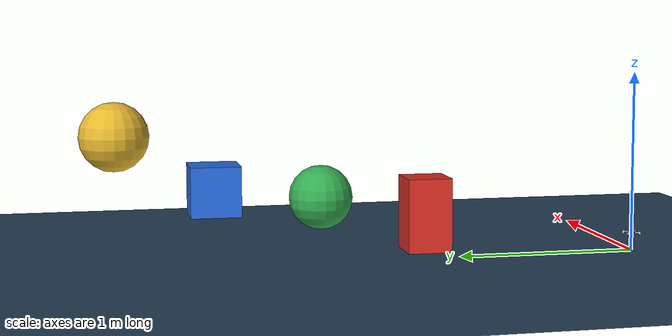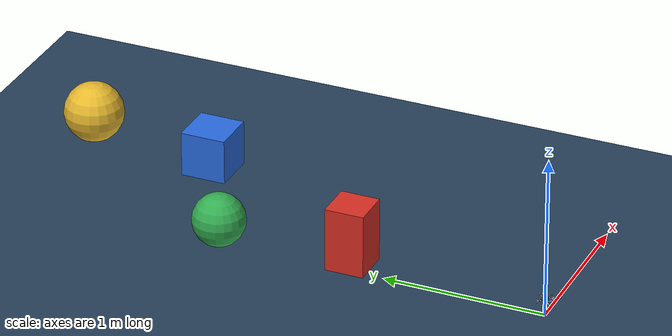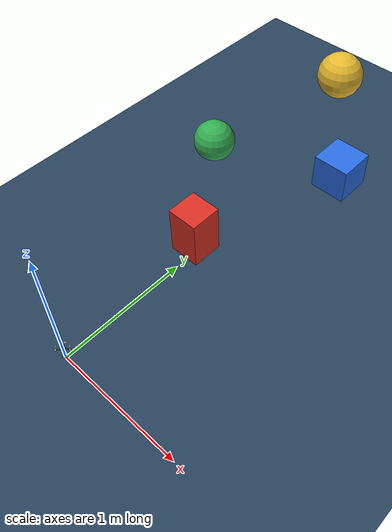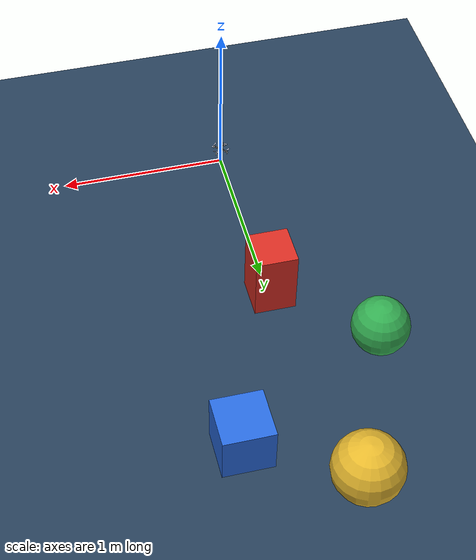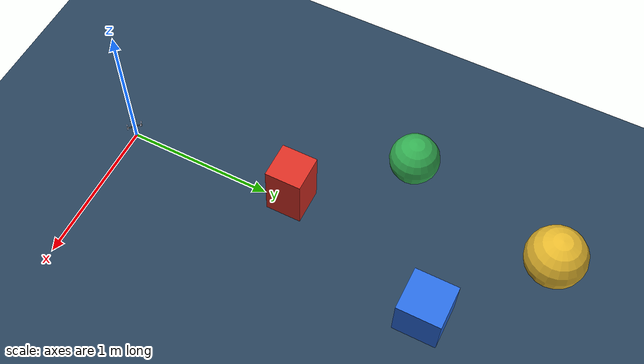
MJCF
<mujoco model="CF2 obstacle scene">
  <include file="cf2.xml"/>

  <statistic center="0 1.4 0.4" extent="2.2" meansize=".05"/>

  <visual>
    <headlight diffuse="0.6 0.6 0.6" ambient="0.3 0.3 0.3" specular="0 0 0"/>
    <rgba haze="0.15 0.25 0.35 1"/>
    <global azimuth="-20" elevation="-20" ellipsoidinertia="true"/>
  </visual>

  <asset>
    <texture type="skybox" builtin="gradient" rgb1="0.3 0.5 0.7" rgb2="0 0 0" width="512" height="3072"/>
    <texture type="2d" name="groundplane" builtin="checker" mark="edge" rgb1="0.2 0.3 0.4" rgb2="0.1 0.2 0.3"
      markrgb="0.8 0.8 0.8" width="300" height="300"/>
    <material name="groundplane" texture="groundplane" texuniform="true" texrepeat="5 5" reflectance="0.2"/>
    <material name="obstacle_red" rgba="0.85 0.18 0.14 1"/>
    <material name="obstacle_green" rgba="0.20 0.68 0.32 1"/>
    <material name="obstacle_blue" rgba="0.16 0.42 0.88 1"/>
    <material name="obstacle_yellow" rgba="0.90 0.72 0.18 1"/>
  </asset>

  <worldbody>
    <light pos="0 0 1.5" dir="0 0 -1" directional="true"/>
    <geom name="floor" size="0 0 0.05" type="plane" material="groundplane"/>

    <geom name="front_cube" type="box" pos="0.00 1.20 0.25" size="0.12 0.12 0.20" material="obstacle_red"/>
    <geom name="left_sphere" type="sphere" pos="-0.42 1.85 0.42" size="0.16" material="obstacle_green"/>
    <geom name="right_cube" type="box" pos="0.45 2.30 0.35" size="0.14 0.14 0.14" material="obstacle_blue"/>
    <geom name="high_sphere" type="sphere" pos="0.00 2.85 0.70" size="0.18" material="obstacle_yellow"/>
  </worldbody>
</mujoco>

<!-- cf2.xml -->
<mujoco model="cf2">
  <option integrator="RK4" density="1.225" viscosity="1.8e-5"/>

  <compiler inertiafromgeom="false" meshdir="assets" autolimits="true"/>

  <default>
    <default class="cf2">
      <default class="visual">
        <geom group="2" type="mesh" contype="0" conaffinity="0"/>
      </default>
      <default class="collision">
        <geom group="3" type="mesh"/>
      </default>
      <site group="5"/>
    </default>
  </default>

  <asset>
    <material name="polished_plastic" rgba="0.631 0.659 0.678 1"/>
    <material name="polished_gold" rgba="0.969 0.878 0.6 1"/>
    <material name="medium_gloss_plastic" rgba="0.109 0.184 0.0 1"/>
    <material name="propeller_plastic" rgba="0.792 0.820 0.933 1"/>
    <material name="white" rgba="1 1 1 1"/>
    <material name="body_frame_plastic" rgba="0.102 0.102 0.102 1"/>
    <material name="burnished_chrome" rgba="0.898 0.898 0.898 1"/>

    <mesh file="cf2_0.obj"/>
    <mesh file="cf2_1.obj"/>
    <mesh file="cf2_2.obj"/>
    <mesh file="cf2_3.obj"/>
    <mesh file="cf2_4.obj"/>
    <mesh file="cf2_5.obj"/>
    <mesh file="cf2_6.obj"/>
    <mesh file="cf2_collision_0.obj"/>
    <mesh file="cf2_collision_1.obj"/>
    <mesh file="cf2_collision_2.obj"/>
    <mesh file="cf2_collision_3.obj"/>
    <mesh file="cf2_collision_4.obj"/>
    <mesh file="cf2_collision_5.obj"/>
    <mesh file="cf2_collision_6.obj"/>
    <mesh file="cf2_collision_7.obj"/>
    <mesh file="cf2_collision_8.obj"/>
    <mesh file="cf2_collision_9.obj"/>
    <mesh file="cf2_collision_10.obj"/>
    <mesh file="cf2_collision_11.obj"/>
    <mesh file="cf2_collision_12.obj"/>
    <mesh file="cf2_collision_13.obj"/>
    <mesh file="cf2_collision_14.obj"/>
    <mesh file="cf2_collision_15.obj"/>
    <mesh file="cf2_collision_16.obj"/>
    <mesh file="cf2_collision_17.obj"/>
    <mesh file="cf2_collision_18.obj"/>
    <mesh file="cf2_collision_19.obj"/>
    <mesh file="cf2_collision_20.obj"/>
    <mesh file="cf2_collision_21.obj"/>
    <mesh file="cf2_collision_22.obj"/>
    <mesh file="cf2_collision_23.obj"/>
    <mesh file="cf2_collision_24.obj"/>
    <mesh file="cf2_collision_25.obj"/>
    <mesh file="cf2_collision_26.obj"/>
    <mesh file="cf2_collision_27.obj"/>
    <mesh file="cf2_collision_28.obj"/>
    <mesh file="cf2_collision_29.obj"/>
    <mesh file="cf2_collision_30.obj"/>
    <mesh file="cf2_collision_31.obj"/>
  </asset>

  <worldbody>
    <body name="cf2" pos="0 0 0.1" childclass="cf2">
      <freejoint/>
      <inertial pos="0 0 0" mass="0.027" diaginertia="2.3951e-5 2.3951e-5 3.2347e-5"/>
      <camera name="track" pos="-1 0 .5" xyaxes="0 -1 0 1 0 2" mode="trackcom"/>
      <camera name="front_camera" pos="0 0.045 0.015" xyaxes="1 0 0 0 0 1" fovy="80"/>
      <geom mesh="cf2_0" material="propeller_plastic" class="visual"/>
      <geom mesh="cf2_1" material="medium_gloss_plastic" class="visual"/>
      <geom mesh="cf2_2" material="polished_gold" class="visual"/>
      <geom mesh="cf2_3" material="polished_plastic" class="visual"/>
      <geom mesh="cf2_4" material="burnished_chrome" class="visual"/>
      <geom mesh="cf2_5" material="body_frame_plastic" class="visual"/>
      <geom mesh="cf2_6" material="white" class="visual"/>
      <geom mesh="cf2_collision_0" class="collision"/>
      <geom mesh="cf2_collision_1" class="collision"/>
      <geom mesh="cf2_collision_2" class="collision"/>
      <geom mesh="cf2_collision_3" class="collision"/>
      <geom mesh="cf2_collision_4" class="collision"/>
      <geom mesh="cf2_collision_5" class="collision"/>
      <geom mesh="cf2_collision_6" class="collision"/>
      <geom mesh="cf2_collision_7" class="collision"/>
      <geom mesh="cf2_collision_8" class="collision"/>
      <geom mesh="cf2_collision_9" class="collision"/>
      <geom mesh="cf2_collision_10" class="collision"/>
      <geom mesh="cf2_collision_11" class="collision"/>
      <geom mesh="cf2_collision_12" class="collision"/>
      <geom mesh="cf2_collision_13" class="collision"/>
      <geom mesh="cf2_collision_14" class="collision"/>
      <geom mesh="cf2_collision_15" class="collision"/>
      <geom mesh="cf2_collision_16" class="collision"/>
      <geom mesh="cf2_collision_17" class="collision"/>
      <geom mesh="cf2_collision_18" class="collision"/>
      <geom mesh="cf2_collision_19" class="collision"/>
      <geom mesh="cf2_collision_20" class="collision"/>
      <geom mesh="cf2_collision_21" class="collision"/>
      <geom mesh="cf2_collision_22" class="collision"/>
      <geom mesh="cf2_collision_23" class="collision"/>
      <geom mesh="cf2_collision_24" class="collision"/>
      <geom mesh="cf2_collision_25" class="collision"/>
      <geom mesh="cf2_collision_26" class="collision"/>
      <geom mesh="cf2_collision_27" class="collision"/>
      <geom mesh="cf2_collision_28" class="collision"/>
      <geom mesh="cf2_collision_29" class="collision"/>
      <geom mesh="cf2_collision_30" class="collision"/>
      <geom mesh="cf2_collision_31" class="collision"/>
      <site name="imu"/>
      <site name="actuation"/>
    </body>
  </worldbody>

  <actuator>
    <motor class="cf2" ctrlrange="0 0.35" gear="0 0 1 0 0 0" site="actuation" name="body_thrust"/>
    <motor class="cf2" ctrlrange="-1 1" gear="0 0 0 -0.00001 0 0" site="actuation" name="x_moment"/>
    <motor class="cf2" ctrlrange="-1 1" gear="0 0 0 0 -0.00001 0" site="actuation" name="y_moment"/>
    <motor class="cf2" ctrlrange="-1 1" gear="0 0 0 0 0 -0.00001" site="actuation" name="z_moment"/>
  </actuator>

  <sensor>
    <gyro name="body_gyro" site="imu"/>
    <accelerometer name="body_linacc" site="imu"/>
    <framequat name="body_quat" objtype="site" objname="imu"/>
  </sensor>

  <keyframe>
    <key name="hover" qpos="0 0 0.1 1 0 0 0" ctrl="0.26487 0 0 0"/>
  </keyframe>
</mujoco>
